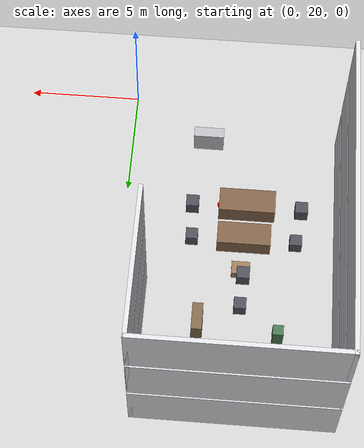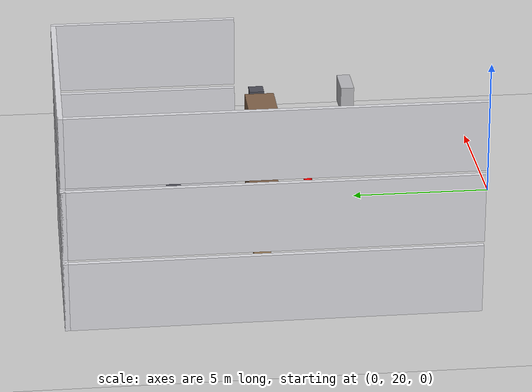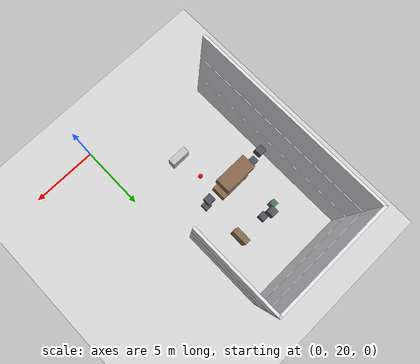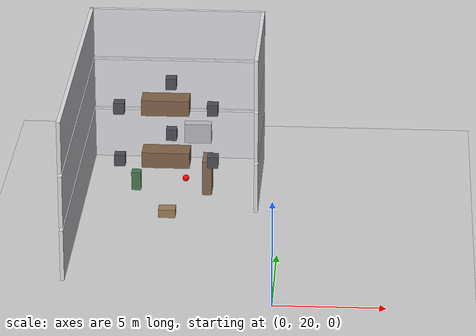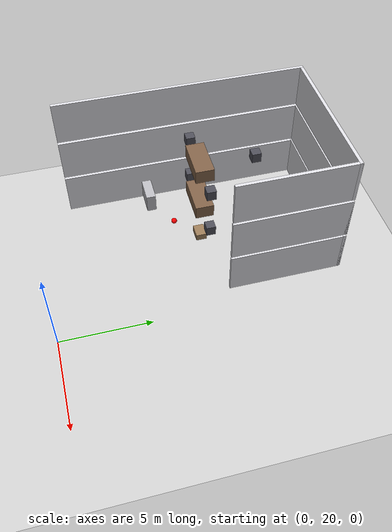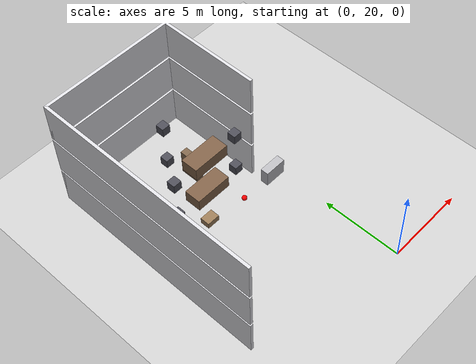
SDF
<sdf version="1.7">
 <world name="generated_world">
  <include><uri>model://sun</uri></include>
  <include><uri>model://ground_plane</uri></include>
  <model name="generated_building">
   <static>true</static>
   <link name="floor_0_room_2_corridor_wall_upper">
    <pose>-1.1900 32.7025 1.2250 0.0000 0.0000 0.0000</pose>
    <collision name="floor_0_room_2_corridor_wall_upper_collision">
     <geometry><box><size>0.1800 6.4150 2.4500</size></box></geometry>
    </collision>
    <visual name="floor_0_room_2_corridor_wall_upper_visual">
     <geometry><box><size>0.1800 6.4150 2.4500</size></box></geometry>
     <material><ambient>0.86 0.86 0.88 1</ambient><diffuse>0.86 0.86 0.88 1</diffuse></material>
    </visual>
    <gravity>false</gravity>
   </link>
   <link name="floor_0_room_2_west_wall">
    <pose>-9.4100 28.8950 1.2250 0.0000 0.0000 0.0000</pose>
    <collision name="floor_0_room_2_west_wall_collision">
     <geometry><box><size>0.1800 14.0300 2.4500</size></box></geometry>
    </collision>
    <visual name="floor_0_room_2_west_wall_visual">
     <geometry><box><size>0.1800 14.0300 2.4500</size></box></geometry>
     <material><ambient>0.86 0.86 0.88 1</ambient><diffuse>0.86 0.86 0.88 1</diffuse></material>
    </visual>
    <gravity>false</gravity>
   </link>
   <link name="floor_0_room_2_north_wall">
    <pose>-5.3000 35.8200 1.2250 0.0000 0.0000 0.0000</pose>
    <collision name="floor_0_room_2_north_wall_collision">
     <geometry><box><size>8.4000 0.1800 2.4500</size></box></geometry>
    </collision>
    <visual name="floor_0_room_2_north_wall_visual">
     <geometry><box><size>8.4000 0.1800 2.4500</size></box></geometry>
     <material><ambient>0.86 0.86 0.88 1</ambient><diffuse>0.86 0.86 0.88 1</diffuse></material>
    </visual>
    <gravity>false</gravity>
   </link>
   <link name="floor_0_room_2_coffee_table">
    <pose>-5.3000 28.8950 0.2500 0.0000 0.0000 0.0000</pose>
    <collision name="floor_0_room_2_coffee_table_collision">
     <geometry><box><size>0.8000 0.6000 0.4000</size></box></geometry>
    </collision>
    <visual name="floor_0_room_2_coffee_table_visual">
     <geometry><box><size>0.8000 0.6000 0.4000</size></box></geometry>
     <material><ambient>0.60 0.48 0.34 1</ambient><diffuse>0.60 0.48 0.34 1</diffuse></material>
    </visual>
    <gravity>false</gravity>
   </link>
   <link name="floor_0_room_2_bookshelf">
    <pose>-3.6000 31.9525 0.8500 0.0000 0.0000 0.0000</pose>
    <collision name="floor_0_room_2_bookshelf_collision">
     <geometry><box><size>0.4500 1.2000 1.7000</size></box></geometry>
    </collision>
    <visual name="floor_0_room_2_bookshelf_visual">
     <geometry><box><size>0.4500 1.2000 1.7000</size></box></geometry>
     <material><ambient>0.50 0.40 0.30 1</ambient><diffuse>0.50 0.40 0.30 1</diffuse></material>
    </visual>
    <gravity>false</gravity>
   </link>
   <link name="floor_0_room_2_planter">
    <pose>-7.0000 31.9525 0.4500 0.0000 0.0000 0.0000</pose>
    <collision name="floor_0_room_2_planter_collision">
     <geometry><box><size>0.4500 0.4500 0.9000</size></box></geometry>
    </collision>
    <visual name="floor_0_room_2_planter_visual">
     <geometry><box><size>0.4500 0.4500 0.9000</size></box></geometry>
     <material><ambient>0.28 0.46 0.30 1</ambient><diffuse>0.28 0.46 0.30 1</diffuse></material>
    </visual>
    <gravity>false</gravity>
   </link>
   <link name="floor_1_room_2_corridor_wall_upper">
    <pose>-1.1900 32.7025 3.8250 0.0000 0.0000 0.0000</pose>
    <collision name="floor_1_room_2_corridor_wall_upper_collision">
     <geometry><box><size>0.1800 6.4150 2.4500</size></box></geometry>
    </collision>
    <visual name="floor_1_room_2_corridor_wall_upper_visual">
     <geometry><box><size>0.1800 6.4150 2.4500</size></box></geometry>
     <material><ambient>0.86 0.86 0.88 1</ambient><diffuse>0.86 0.86 0.88 1</diffuse></material>
    </visual>
    <gravity>false</gravity>
   </link>
   <link name="floor_1_room_2_west_wall">
    <pose>-9.4100 28.8950 3.8250 0.0000 0.0000 0.0000</pose>
    <collision name="floor_1_room_2_west_wall_collision">
     <geometry><box><size>0.1800 14.0300 2.4500</size></box></geometry>
    </collision>
    <visual name="floor_1_room_2_west_wall_visual">
     <geometry><box><size>0.1800 14.0300 2.4500</size></box></geometry>
     <material><ambient>0.86 0.86 0.88 1</ambient><diffuse>0.86 0.86 0.88 1</diffuse></material>
    </visual>
    <gravity>false</gravity>
   </link>
   <link name="floor_1_room_2_north_wall">
    <pose>-5.3000 35.8200 3.8250 0.0000 0.0000 0.0000</pose>
    <collision name="floor_1_room_2_north_wall_collision">
     <geometry><box><size>8.4000 0.1800 2.4500</size></box></geometry>
    </collision>
    <visual name="floor_1_room_2_north_wall_visual">
     <geometry><box><size>8.4000 0.1800 2.4500</size></box></geometry>
     <material><ambient>0.86 0.86 0.88 1</ambient><diffuse>0.86 0.86 0.88 1</diffuse></material>
    </visual>
    <gravity>false</gravity>
   </link>
   <link name="floor_1_room_2_table">
    <pose>-5.3000 28.8950 3.0500 0.0000 0.0000 0.0000</pose>
    <collision name="floor_1_room_2_table_collision">
     <geometry><box><size>2.2000 1.0000 0.7500</size></box></geometry>
    </collision>
    <visual name="floor_1_room_2_table_visual">
     <geometry><box><size>2.2000 1.0000 0.7500</size></box></geometry>
     <material><ambient>0.50 0.38 0.28 1</ambient><diffuse>0.50 0.38 0.28 1</diffuse></material>
    </visual>
    <gravity>false</gravity>
   </link>
   <link name="floor_1_room_2_chair_north">
    <pose>-5.3000 31.9525 2.8800 0.0000 0.0000 0.0000</pose>
    <collision name="floor_1_room_2_chair_north_collision">
     <geometry><box><size>0.5000 0.5000 0.5500</size></box></geometry>
    </collision>
    <visual name="floor_1_room_2_chair_north_visual">
     <geometry><box><size>0.5000 0.5000 0.5500</size></box></geometry>
     <material><ambient>0.30 0.30 0.34 1</ambient><diffuse>0.30 0.30 0.34 1</diffuse></material>
    </visual>
    <gravity>false</gravity>
   </link>
   <link name="floor_1_room_2_chair_west">
    <pose>-7.4500 28.8950 2.8800 0.0000 0.0000 1.5700</pose>
    <collision name="floor_1_room_2_chair_west_collision">
     <geometry><box><size>0.5000 0.5000 0.5500</size></box></geometry>
    </collision>
    <visual name="floor_1_room_2_chair_west_visual">
     <geometry><box><size>0.5000 0.5000 0.5500</size></box></geometry>
     <material><ambient>0.30 0.30 0.34 1</ambient><diffuse>0.30 0.30 0.34 1</diffuse></material>
    </visual>
    <gravity>false</gravity>
   </link>
   <link name="floor_1_room_2_chair_east">
    <pose>-3.1500 28.8950 2.8800 0.0000 0.0000 1.5700</pose>
    <collision name="floor_1_room_2_chair_east_collision">
     <geometry><box><size>0.5000 0.5000 0.5500</size></box></geometry>
    </collision>
    <visual name="floor_1_room_2_chair_east_visual">
     <geometry><box><size>0.5000 0.5000 0.5500</size></box></geometry>
     <material><ambient>0.30 0.30 0.34 1</ambient><diffuse>0.30 0.30 0.34 1</diffuse></material>
    </visual>
    <gravity>false</gravity>
   </link>
   <link name="floor_2_room_2_corridor_wall_upper">
    <pose>-1.1900 32.7025 6.4250 0.0000 0.0000 0.0000</pose>
    <collision name="floor_2_room_2_corridor_wall_upper_collision">
     <geometry><box><size>0.1800 6.4150 2.4500</size></box></geometry>
    </collision>
    <visual name="floor_2_room_2_corridor_wall_upper_visual">
     <geometry><box><size>0.1800 6.4150 2.4500</size></box></geometry>
     <material><ambient>0.86 0.86 0.88 1</ambient><diffuse>0.86 0.86 0.88 1</diffuse></material>
    </visual>
    <gravity>false</gravity>
   </link>
   <link name="floor_2_room_2_west_wall">
    <pose>-9.4100 28.8950 6.4250 0.0000 0.0000 0.0000</pose>
    <collision name="floor_2_room_2_west_wall_collision">
     <geometry><box><size>0.1800 14.0300 2.4500</size></box></geometry>
    </collision>
    <visual name="floor_2_room_2_west_wall_visual">
     <geometry><box><size>0.1800 14.0300 2.4500</size></box></geometry>
     <material><ambient>0.86 0.86 0.88 1</ambient><diffuse>0.86 0.86 0.88 1</diffuse></material>
    </visual>
    <gravity>false</gravity>
   </link>
   <link name="floor_2_room_2_north_wall">
    <pose>-5.3000 35.8200 6.4250 0.0000 0.0000 0.0000</pose>
    <collision name="floor_2_room_2_north_wall_collision">
     <geometry><box><size>8.4000 0.1800 2.4500</size></box></geometry>
    </collision>
    <visual name="floor_2_room_2_north_wall_visual">
     <geometry><box><size>8.4000 0.1800 2.4500</size></box></geometry>
     <material><ambient>0.86 0.86 0.88 1</ambient><diffuse>0.86 0.86 0.88 1</diffuse></material>
    </visual>
    <gravity>false</gravity>
   </link>
   <link name="floor_2_room_2_table">
    <pose>-5.3000 28.8950 5.6500 0.0000 0.0000 0.0000</pose>
    <collision name="floor_2_room_2_table_collision">
     <geometry><box><size>2.2000 1.0000 0.7500</size></box></geometry>
    </collision>
    <visual name="floor_2_room_2_table_visual">
     <geometry><box><size>2.2000 1.0000 0.7500</size></box></geometry>
     <material><ambient>0.50 0.38 0.28 1</ambient><diffuse>0.50 0.38 0.28 1</diffuse></material>
    </visual>
    <gravity>false</gravity>
   </link>
   <link name="floor_2_room_2_chair_north">
    <pose>-5.3000 31.9525 5.4800 0.0000 0.0000 0.0000</pose>
    <collision name="floor_2_room_2_chair_north_collision">
     <geometry><box><size>0.5000 0.5000 0.5500</size></box></geometry>
    </collision>
    <visual name="floor_2_room_2_chair_north_visual">
     <geometry><box><size>0.5000 0.5000 0.5500</size></box></geometry>
     <material><ambient>0.30 0.30 0.34 1</ambient><diffuse>0.30 0.30 0.34 1</diffuse></material>
    </visual>
    <gravity>false</gravity>
   </link>
   <link name="floor_2_room_2_chair_west">
    <pose>-7.4500 28.8950 5.4800 0.0000 0.0000 1.5700</pose>
    <collision name="floor_2_room_2_chair_west_collision">
     <geometry><box><size>0.5000 0.5000 0.5500</size></box></geometry>
    </collision>
    <visual name="floor_2_room_2_chair_west_visual">
     <geometry><box><size>0.5000 0.5000 0.5500</size></box></geometry>
     <material><ambient>0.30 0.30 0.34 1</ambient><diffuse>0.30 0.30 0.34 1</diffuse></material>
    </visual>
    <gravity>false</gravity>
   </link>
   <link name="floor_2_room_2_chair_east">
    <pose>-3.1500 28.8950 5.4800 0.0000 0.0000 1.5700</pose>
    <collision name="floor_2_room_2_chair_east_collision">
     <geometry><box><size>0.5000 0.5000 0.5500</size></box></geometry>
    </collision>
    <visual name="floor_2_room_2_chair_east_visual">
     <geometry><box><size>0.5000 0.5000 0.5500</size></box></geometry>
     <material><ambient>0.30 0.30 0.34 1</ambient><diffuse>0.30 0.30 0.34 1</diffuse></material>
    </visual>
    <gravity>false</gravity>
   </link>
   <link name="floor_2_room_2_credenza">
    <pose>-3.6000 25.8375 5.6500 0.0000 0.0000 0.0000</pose>
    <collision name="floor_2_room_2_credenza_collision">
     <geometry><box><size>1.2000 0.4500 0.9000</size></box></geometry>
    </collision>
    <visual name="floor_2_room_2_credenza_visual">
     <geometry><box><size>1.2000 0.4500 0.9000</size></box></geometry>
     <material><ambient>0.72 0.72 0.74 1</ambient><diffuse>0.72 0.72 0.74 1</diffuse></material>
    </visual>
    <gravity>false</gravity>
   </link>
  </model>
  <model name="danger_red_sphere_02">
   <static>true</static>
   <pose>-4.269736 27.195037 2.750000 0.000000 0.000000 0.000000</pose>
   <link name="link">
    <collision name="collision"><geometry><sphere><radius>0.150</radius></sphere></geometry></collision>
    <visual name="visual">
     <geometry><sphere><radius>0.150</radius></sphere></geometry>
     <material><ambient>1.0 0.0 0.0 1.0</ambient><diffuse>1.0 0.0 0.0 1.0</diffuse></material>
    </visual>
   </link>
  </model>
 </world>
</sdf>
